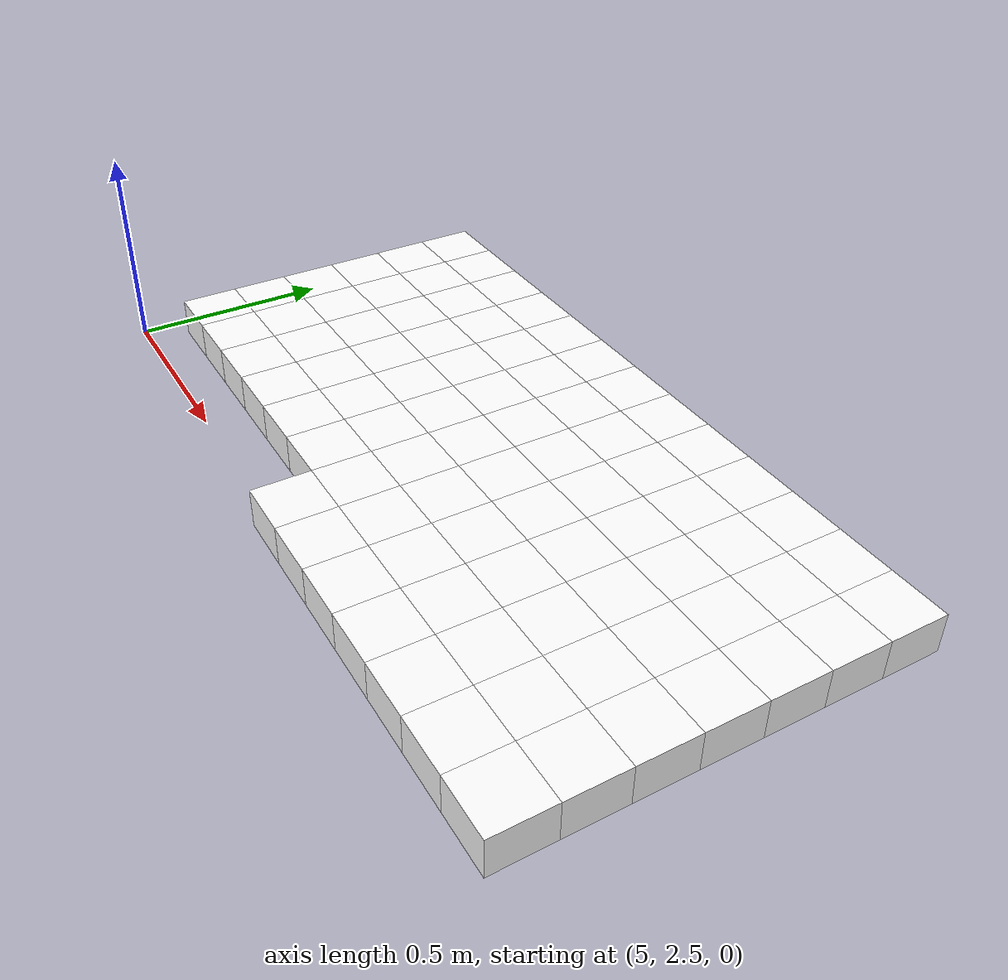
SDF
<sdf version="1.7">
 <world name="default">
  <include><uri>model://sun</uri></include>
  <model name="static_environment">
   <static>true</static>
   <link name="region_733">
    <pose>5.950000000000005 2.5499999999999994 0.0 0.0 0.0 0.0</pose>
    <collision name="region_733_collision">
     <geometry><box><size>0.15 0.15 0.1</size></box></geometry>
     <surface><friction><ode><mu>1.0</mu><mu2>1.0</mu2></ode></friction></surface>
    </collision>
    <visual name="region_733_visual">
     <geometry><box><size>0.15 0.15 0.1</size></box></geometry>
     <material><ambient>1.0 1.0 1.0 1.0</ambient><diffuse>1.0 1.0 1.0 1.0</diffuse></material>
    </visual>
   </link>
   <link name="region_734">
    <pose>6.100000000000005 2.5499999999999994 0.0 0.0 0.0 0.0</pose>
    <collision name="region_734_collision">
     <geometry><box><size>0.15 0.15 0.1</size></box></geometry>
     <surface><friction><ode><mu>1.0</mu><mu2>1.0</mu2></ode></friction></surface>
    </collision>
    <visual name="region_734_visual">
     <geometry><box><size>0.15 0.15 0.1</size></box></geometry>
     <material><ambient>1.0 1.0 1.0 1.0</ambient><diffuse>1.0 1.0 1.0 1.0</diffuse></material>
    </visual>
   </link>
   <link name="region_735">
    <pose>6.250000000000005 2.5499999999999994 0.0 0.0 0.0 0.0</pose>
    <collision name="region_735_collision">
     <geometry><box><size>0.15 0.15 0.1</size></box></geometry>
     <surface><friction><ode><mu>1.0</mu><mu2>1.0</mu2></ode></friction></surface>
    </collision>
    <visual name="region_735_visual">
     <geometry><box><size>0.15 0.15 0.1</size></box></geometry>
     <material><ambient>1.0 1.0 1.0 1.0</ambient><diffuse>1.0 1.0 1.0 1.0</diffuse></material>
    </visual>
   </link>
   <link name="region_736">
    <pose>6.400000000000006 2.5499999999999994 0.0 0.0 0.0 0.0</pose>
    <collision name="region_736_collision">
     <geometry><box><size>0.15 0.15 0.1</size></box></geometry>
     <surface><friction><ode><mu>1.0</mu><mu2>1.0</mu2></ode></friction></surface>
    </collision>
    <visual name="region_736_visual">
     <geometry><box><size>0.15 0.15 0.1</size></box></geometry>
     <material><ambient>1.0 1.0 1.0 1.0</ambient><diffuse>1.0 1.0 1.0 1.0</diffuse></material>
    </visual>
   </link>
   <link name="region_737">
    <pose>6.550000000000006 2.5499999999999994 0.0 0.0 0.0 0.0</pose>
    <collision name="region_737_collision">
     <geometry><box><size>0.15 0.15 0.1</size></box></geometry>
     <surface><friction><ode><mu>1.0</mu><mu2>1.0</mu2></ode></friction></surface>
    </collision>
    <visual name="region_737_visual">
     <geometry><box><size>0.15 0.15 0.1</size></box></geometry>
     <material><ambient>1.0 1.0 1.0 1.0</ambient><diffuse>1.0 1.0 1.0 1.0</diffuse></material>
    </visual>
   </link>
   <link name="region_738">
    <pose>6.700000000000006 2.5499999999999994 0.0 0.0 0.0 0.0</pose>
    <collision name="region_738_collision">
     <geometry><box><size>0.15 0.15 0.1</size></box></geometry>
     <surface><friction><ode><mu>1.0</mu><mu2>1.0</mu2></ode></friction></surface>
    </collision>
    <visual name="region_738_visual">
     <geometry><box><size>0.15 0.15 0.1</size></box></geometry>
     <material><ambient>1.0 1.0 1.0 1.0</ambient><diffuse>1.0 1.0 1.0 1.0</diffuse></material>
    </visual>
   </link>
   <link name="region_739">
    <pose>6.850000000000007 2.5499999999999994 0.0 0.0 0.0 0.0</pose>
    <collision name="region_739_collision">
     <geometry><box><size>0.15 0.15 0.1</size></box></geometry>
     <surface><friction><ode><mu>1.0</mu><mu2>1.0</mu2></ode></friction></surface>
    </collision>
    <visual name="region_739_visual">
     <geometry><box><size>0.15 0.15 0.1</size></box></geometry>
     <material><ambient>1.0 1.0 1.0 1.0</ambient><diffuse>1.0 1.0 1.0 1.0</diffuse></material>
    </visual>
   </link>
   <link name="region_747">
    <pose>5.0500000000000025 2.6999999999999997 0.0 0.0 0.0 0.0</pose>
    <collision name="region_747_collision">
     <geometry><box><size>0.15 0.15 0.1</size></box></geometry>
     <surface><friction><ode><mu>1.0</mu><mu2>1.0</mu2></ode></friction></surface>
    </collision>
    <visual name="region_747_visual">
     <geometry><box><size>0.15 0.15 0.1</size></box></geometry>
     <material><ambient>1.0 1.0 1.0 1.0</ambient><diffuse>1.0 1.0 1.0 1.0</diffuse></material>
    </visual>
   </link>
   <link name="region_748">
    <pose>5.200000000000003 2.6999999999999997 0.0 0.0 0.0 0.0</pose>
    <collision name="region_748_collision">
     <geometry><box><size>0.15 0.15 0.1</size></box></geometry>
     <surface><friction><ode><mu>1.0</mu><mu2>1.0</mu2></ode></friction></surface>
    </collision>
    <visual name="region_748_visual">
     <geometry><box><size>0.15 0.15 0.1</size></box></geometry>
     <material><ambient>1.0 1.0 1.0 1.0</ambient><diffuse>1.0 1.0 1.0 1.0</diffuse></material>
    </visual>
   </link>
   <link name="region_749">
    <pose>5.350000000000003 2.6999999999999997 0.0 0.0 0.0 0.0</pose>
    <collision name="region_749_collision">
     <geometry><box><size>0.15 0.15 0.1</size></box></geometry>
     <surface><friction><ode><mu>1.0</mu><mu2>1.0</mu2></ode></friction></surface>
    </collision>
    <visual name="region_749_visual">
     <geometry><box><size>0.15 0.15 0.1</size></box></geometry>
     <material><ambient>1.0 1.0 1.0 1.0</ambient><diffuse>1.0 1.0 1.0 1.0</diffuse></material>
    </visual>
   </link>
   <link name="region_750">
    <pose>5.5000000000000036 2.6999999999999997 0.0 0.0 0.0 0.0</pose>
    <collision name="region_750_collision">
     <geometry><box><size>0.15 0.15 0.1</size></box></geometry>
     <surface><friction><ode><mu>1.0</mu><mu2>1.0</mu2></ode></friction></surface>
    </collision>
    <visual name="region_750_visual">
     <geometry><box><size>0.15 0.15 0.1</size></box></geometry>
     <material><ambient>1.0 1.0 1.0 1.0</ambient><diffuse>1.0 1.0 1.0 1.0</diffuse></material>
    </visual>
   </link>
   <link name="region_751">
    <pose>5.650000000000004 2.6999999999999997 0.0 0.0 0.0 0.0</pose>
    <collision name="region_751_collision">
     <geometry><box><size>0.15 0.15 0.1</size></box></geometry>
     <surface><friction><ode><mu>1.0</mu><mu2>1.0</mu2></ode></friction></surface>
    </collision>
    <visual name="region_751_visual">
     <geometry><box><size>0.15 0.15 0.1</size></box></geometry>
     <material><ambient>1.0 1.0 1.0 1.0</ambient><diffuse>1.0 1.0 1.0 1.0</diffuse></material>
    </visual>
   </link>
   <link name="region_752">
    <pose>5.800000000000004 2.6999999999999997 0.0 0.0 0.0 0.0</pose>
    <collision name="region_752_collision">
     <geometry><box><size>0.15 0.15 0.1</size></box></geometry>
     <surface><friction><ode><mu>1.0</mu><mu2>1.0</mu2></ode></friction></surface>
    </collision>
    <visual name="region_752_visual">
     <geometry><box><size>0.15 0.15 0.1</size></box></geometry>
     <material><ambient>1.0 1.0 1.0 1.0</ambient><diffuse>1.0 1.0 1.0 1.0</diffuse></material>
    </visual>
   </link>
   <link name="region_753">
    <pose>5.950000000000005 2.6999999999999997 0.0 0.0 0.0 0.0</pose>
    <collision name="region_753_collision">
     <geometry><box><size>0.15 0.15 0.1</size></box></geometry>
     <surface><friction><ode><mu>1.0</mu><mu2>1.0</mu2></ode></friction></surface>
    </collision>
    <visual name="region_753_visual">
     <geometry><box><size>0.15 0.15 0.1</size></box></geometry>
     <material><ambient>1.0 1.0 1.0 1.0</ambient><diffuse>1.0 1.0 1.0 1.0</diffuse></material>
    </visual>
   </link>
   <link name="region_754">
    <pose>6.100000000000005 2.6999999999999997 0.0 0.0 0.0 0.0</pose>
    <collision name="region_754_collision">
     <geometry><box><size>0.15 0.15 0.1</size></box></geometry>
     <surface><friction><ode><mu>1.0</mu><mu2>1.0</mu2></ode></friction></surface>
    </collision>
    <visual name="region_754_visual">
     <geometry><box><size>0.15 0.15 0.1</size></box></geometry>
     <material><ambient>1.0 1.0 1.0 1.0</ambient><diffuse>1.0 1.0 1.0 1.0</diffuse></material>
    </visual>
   </link>
   <link name="region_755">
    <pose>6.250000000000005 2.6999999999999997 0.0 0.0 0.0 0.0</pose>
    <collision name="region_755_collision">
     <geometry><box><size>0.15 0.15 0.1</size></box></geometry>
     <surface><friction><ode><mu>1.0</mu><mu2>1.0</mu2></ode></friction></surface>
    </collision>
    <visual name="region_755_visual">
     <geometry><box><size>0.15 0.15 0.1</size></box></geometry>
     <material><ambient>1.0 1.0 1.0 1.0</ambient><diffuse>1.0 1.0 1.0 1.0</diffuse></material>
    </visual>
   </link>
   <link name="region_756">
    <pose>6.400000000000006 2.6999999999999997 0.0 0.0 0.0 0.0</pose>
    <collision name="region_756_collision">
     <geometry><box><size>0.15 0.15 0.1</size></box></geometry>
     <surface><friction><ode><mu>1.0</mu><mu2>1.0</mu2></ode></friction></surface>
    </collision>
    <visual name="region_756_visual">
     <geometry><box><size>0.15 0.15 0.1</size></box></geometry>
     <material><ambient>1.0 1.0 1.0 1.0</ambient><diffuse>1.0 1.0 1.0 1.0</diffuse></material>
    </visual>
   </link>
   <link name="region_757">
    <pose>6.550000000000006 2.6999999999999997 0.0 0.0 0.0 0.0</pose>
    <collision name="region_757_collision">
     <geometry><box><size>0.15 0.15 0.1</size></box></geometry>
     <surface><friction><ode><mu>1.0</mu><mu2>1.0</mu2></ode></friction></surface>
    </collision>
    <visual name="region_757_visual">
     <geometry><box><size>0.15 0.15 0.1</size></box></geometry>
     <material><ambient>1.0 1.0 1.0 1.0</ambient><diffuse>1.0 1.0 1.0 1.0</diffuse></material>
    </visual>
   </link>
   <link name="region_758">
    <pose>6.700000000000006 2.6999999999999997 0.0 0.0 0.0 0.0</pose>
    <collision name="region_758_collision">
     <geometry><box><size>0.15 0.15 0.1</size></box></geometry>
     <surface><friction><ode><mu>1.0</mu><mu2>1.0</mu2></ode></friction></surface>
    </collision>
    <visual name="region_758_visual">
     <geometry><box><size>0.15 0.15 0.1</size></box></geometry>
     <material><ambient>1.0 1.0 1.0 1.0</ambient><diffuse>1.0 1.0 1.0 1.0</diffuse></material>
    </visual>
   </link>
   <link name="region_759">
    <pose>6.850000000000007 2.6999999999999997 0.0 0.0 0.0 0.0</pose>
    <collision name="region_759_collision">
     <geometry><box><size>0.15 0.15 0.1</size></box></geometry>
     <surface><friction><ode><mu>1.0</mu><mu2>1.0</mu2></ode></friction></surface>
    </collision>
    <visual name="region_759_visual">
     <geometry><box><size>0.15 0.15 0.1</size></box></geometry>
     <material><ambient>1.0 1.0 1.0 1.0</ambient><diffuse>1.0 1.0 1.0 1.0</diffuse></material>
    </visual>
   </link>
   <link name="region_767">
    <pose>5.0500000000000025 2.8499999999999996 0.0 0.0 0.0 0.0</pose>
    <collision name="region_767_collision">
     <geometry><box><size>0.15 0.15 0.1</size></box></geometry>
     <surface><friction><ode><mu>1.0</mu><mu2>1.0</mu2></ode></friction></surface>
    </collision>
    <visual name="region_767_visual">
     <geometry><box><size>0.15 0.15 0.1</size></box></geometry>
     <material><ambient>1.0 1.0 1.0 1.0</ambient><diffuse>1.0 1.0 1.0 1.0</diffuse></material>
    </visual>
   </link>
   <link name="region_768">
    <pose>5.200000000000003 2.8499999999999996 0.0 0.0 0.0 0.0</pose>
    <collision name="region_768_collision">
     <geometry><box><size>0.15 0.15 0.1</size></box></geometry>
     <surface><friction><ode><mu>1.0</mu><mu2>1.0</mu2></ode></friction></surface>
    </collision>
    <visual name="region_768_visual">
     <geometry><box><size>0.15 0.15 0.1</size></box></geometry>
     <material><ambient>1.0 1.0 1.0 1.0</ambient><diffuse>1.0 1.0 1.0 1.0</diffuse></material>
    </visual>
   </link>
   <link name="region_769">
    <pose>5.350000000000003 2.8499999999999996 0.0 0.0 0.0 0.0</pose>
    <collision name="region_769_collision">
     <geometry><box><size>0.15 0.15 0.1</size></box></geometry>
     <surface><friction><ode><mu>1.0</mu><mu2>1.0</mu2></ode></friction></surface>
    </collision>
    <visual name="region_769_visual">
     <geometry><box><size>0.15 0.15 0.1</size></box></geometry>
     <material><ambient>1.0 1.0 1.0 1.0</ambient><diffuse>1.0 1.0 1.0 1.0</diffuse></material>
    </visual>
   </link>
   <link name="region_770">
    <pose>5.5000000000000036 2.8499999999999996 0.0 0.0 0.0 0.0</pose>
    <collision name="region_770_collision">
     <geometry><box><size>0.15 0.15 0.1</size></box></geometry>
     <surface><friction><ode><mu>1.0</mu><mu2>1.0</mu2></ode></friction></surface>
    </collision>
    <visual name="region_770_visual">
     <geometry><box><size>0.15 0.15 0.1</size></box></geometry>
     <material><ambient>1.0 1.0 1.0 1.0</ambient><diffuse>1.0 1.0 1.0 1.0</diffuse></material>
    </visual>
   </link>
   <link name="region_771">
    <pose>5.650000000000004 2.8499999999999996 0.0 0.0 0.0 0.0</pose>
    <collision name="region_771_collision">
     <geometry><box><size>0.15 0.15 0.1</size></box></geometry>
     <surface><friction><ode><mu>1.0</mu><mu2>1.0</mu2></ode></friction></surface>
    </collision>
    <visual name="region_771_visual">
     <geometry><box><size>0.15 0.15 0.1</size></box></geometry>
     <material><ambient>1.0 1.0 1.0 1.0</ambient><diffuse>1.0 1.0 1.0 1.0</diffuse></material>
    </visual>
   </link>
   <link name="region_772">
    <pose>5.800000000000004 2.8499999999999996 0.0 0.0 0.0 0.0</pose>
    <collision name="region_772_collision">
     <geometry><box><size>0.15 0.15 0.1</size></box></geometry>
     <surface><friction><ode><mu>1.0</mu><mu2>1.0</mu2></ode></friction></surface>
    </collision>
    <visual name="region_772_visual">
     <geometry><box><size>0.15 0.15 0.1</size></box></geometry>
     <material><ambient>1.0 1.0 1.0 1.0</ambient><diffuse>1.0 1.0 1.0 1.0</diffuse></material>
    </visual>
   </link>
   <link name="region_773">
    <pose>5.950000000000005 2.8499999999999996 0.0 0.0 0.0 0.0</pose>
    <collision name="region_773_collision">
     <geometry><box><size>0.15 0.15 0.1</size></box></geometry>
     <surface><friction><ode><mu>1.0</mu><mu2>1.0</mu2></ode></friction></surface>
    </collision>
    <visual name="region_773_visual">
     <geometry><box><size>0.15 0.15 0.1</size></box></geometry>
     <material><ambient>1.0 1.0 1.0 1.0</ambient><diffuse>1.0 1.0 1.0 1.0</diffuse></material>
    </visual>
   </link>
   <link name="region_774">
    <pose>6.100000000000005 2.8499999999999996 0.0 0.0 0.0 0.0</pose>
    <collision name="region_774_collision">
     <geometry><box><size>0.15 0.15 0.1</size></box></geometry>
     <surface><friction><ode><mu>1.0</mu><mu2>1.0</mu2></ode></friction></surface>
    </collision>
    <visual name="region_774_visual">
     <geometry><box><size>0.15 0.15 0.1</size></box></geometry>
     <material><ambient>1.0 1.0 1.0 1.0</ambient><diffuse>1.0 1.0 1.0 1.0</diffuse></material>
    </visual>
   </link>
   <link name="region_775">
    <pose>6.250000000000005 2.8499999999999996 0.0 0.0 0.0 0.0</pose>
    <collision name="region_775_collision">
     <geometry><box><size>0.15 0.15 0.1</size></box></geometry>
     <surface><friction><ode><mu>1.0</mu><mu2>1.0</mu2></ode></friction></surface>
    </collision>
    <visual name="region_775_visual">
     <geometry><box><size>0.15 0.15 0.1</size></box></geometry>
     <material><ambient>1.0 1.0 1.0 1.0</ambient><diffuse>1.0 1.0 1.0 1.0</diffuse></material>
    </visual>
   </link>
   <link name="region_776">
    <pose>6.400000000000006 2.8499999999999996 0.0 0.0 0.0 0.0</pose>
    <collision name="region_776_collision">
     <geometry><box><size>0.15 0.15 0.1</size></box></geometry>
     <surface><friction><ode><mu>1.0</mu><mu2>1.0</mu2></ode></friction></surface>
    </collision>
    <visual name="region_776_visual">
     <geometry><box><size>0.15 0.15 0.1</size></box></geometry>
     <material><ambient>1.0 1.0 1.0 1.0</ambient><diffuse>1.0 1.0 1.0 1.0</diffuse></material>
    </visual>
   </link>
   <link name="region_777">
    <pose>6.550000000000006 2.8499999999999996 0.0 0.0 0.0 0.0</pose>
    <collision name="region_777_collision">
     <geometry><box><size>0.15 0.15 0.1</size></box></geometry>
     <surface><friction><ode><mu>1.0</mu><mu2>1.0</mu2></ode></friction></surface>
    </collision>
    <visual name="region_777_visual">
     <geometry><box><size>0.15 0.15 0.1</size></box></geometry>
     <material><ambient>1.0 1.0 1.0 1.0</ambient><diffuse>1.0 1.0 1.0 1.0</diffuse></material>
    </visual>
   </link>
   <link name="region_778">
    <pose>6.700000000000006 2.8499999999999996 0.0 0.0 0.0 0.0</pose>
    <collision name="region_778_collision">
     <geometry><box><size>0.15 0.15 0.1</size></box></geometry>
     <surface><friction><ode><mu>1.0</mu><mu2>1.0</mu2></ode></friction></surface>
    </collision>
    <visual name="region_778_visual">
     <geometry><box><size>0.15 0.15 0.1</size></box></geometry>
     <material><ambient>1.0 1.0 1.0 1.0</ambient><diffuse>1.0 1.0 1.0 1.0</diffuse></material>
    </visual>
   </link>
   <link name="region_779">
    <pose>6.850000000000007 2.8499999999999996 0.0 0.0 0.0 0.0</pose>
    <collision name="region_779_collision">
     <geometry><box><size>0.15 0.15 0.1</size></box></geometry>
     <surface><friction><ode><mu>1.0</mu><mu2>1.0</mu2></ode></friction></surface>
    </collision>
    <visual name="region_779_visual">
     <geometry><box><size>0.15 0.15 0.1</size></box></geometry>
     <material><ambient>1.0 1.0 1.0 1.0</ambient><diffuse>1.0 1.0 1.0 1.0</diffuse></material>
    </visual>
   </link>
   <link name="region_787">
    <pose>5.0500000000000025 2.9999999999999996 0.0 0.0 0.0 0.0</pose>
    <collision name="region_787_collision">
     <geometry><box><size>0.15 0.15 0.1</size></box></geometry>
     <surface><friction><ode><mu>1.0</mu><mu2>1.0</mu2></ode></friction></surface>
    </collision>
    <visual name="region_787_visual">
     <geometry><box><size>0.15 0.15 0.1</size></box></geometry>
     <material><ambient>1.0 1.0 1.0 1.0</ambient><diffuse>1.0 1.0 1.0 1.0</diffuse></material>
    </visual>
   </link>
   <link name="region_788">
    <pose>5.200000000000003 2.9999999999999996 0.0 0.0 0.0 0.0</pose>
    <collision name="region_788_collision">
     <geometry><box><size>0.15 0.15 0.1</size></box></geometry>
     <surface><friction><ode><mu>1.0</mu><mu2>1.0</mu2></ode></friction></surface>
    </collision>
    <visual name="region_788_visual">
     <geometry><box><size>0.15 0.15 0.1</size></box></geometry>
     <material><ambient>1.0 1.0 1.0 1.0</ambient><diffuse>1.0 1.0 1.0 1.0</diffuse></material>
    </visual>
   </link>
   <link name="region_789">
    <pose>5.350000000000003 2.9999999999999996 0.0 0.0 0.0 0.0</pose>
    <collision name="region_789_collision">
     <geometry><box><size>0.15 0.15 0.1</size></box></geometry>
     <surface><friction><ode><mu>1.0</mu><mu2>1.0</mu2></ode></friction></surface>
    </collision>
    <visual name="region_789_visual">
     <geometry><box><size>0.15 0.15 0.1</size></box></geometry>
     <material><ambient>1.0 1.0 1.0 1.0</ambient><diffuse>1.0 1.0 1.0 1.0</diffuse></material>
    </visual>
   </link>
   <link name="region_790">
    <pose>5.5000000000000036 2.9999999999999996 0.0 0.0 0.0 0.0</pose>
    <collision name="region_790_collision">
     <geometry><box><size>0.15 0.15 0.1</size></box></geometry>
     <surface><friction><ode><mu>1.0</mu><mu2>1.0</mu2></ode></friction></surface>
    </collision>
    <visual name="region_790_visual">
     <geometry><box><size>0.15 0.15 0.1</size></box></geometry>
     <material><ambient>1.0 1.0 1.0 1.0</ambient><diffuse>1.0 1.0 1.0 1.0</diffuse></material>
    </visual>
   </link>
   <link name="region_791">
    <pose>5.650000000000004 2.9999999999999996 0.0 0.0 0.0 0.0</pose>
    <collision name="region_791_collision">
     <geometry><box><size>0.15 0.15 0.1</size></box></geometry>
     <surface><friction><ode><mu>1.0</mu><mu2>1.0</mu2></ode></friction></surface>
    </collision>
    <visual name="region_791_visual">
     <geometry><box><size>0.15 0.15 0.1</size></box></geometry>
     <material><ambient>1.0 1.0 1.0 1.0</ambient><diffuse>1.0 1.0 1.0 1.0</diffuse></material>
    </visual>
   </link>
   <link name="region_792">
    <pose>5.800000000000004 2.9999999999999996 0.0 0.0 0.0 0.0</pose>
    <collision name="region_792_collision">
     <geometry><box><size>0.15 0.15 0.1</size></box></geometry>
     <surface><friction><ode><mu>1.0</mu><mu2>1.0</mu2></ode></friction></surface>
    </collision>
    <visual name="region_792_visual">
     <geometry><box><size>0.15 0.15 0.1</size></box></geometry>
     <material><ambient>1.0 1.0 1.0 1.0</ambient><diffuse>1.0 1.0 1.0 1.0</diffuse></material>
    </visual>
   </link>
   <link name="region_793">
    <pose>5.950000000000005 2.9999999999999996 0.0 0.0 0.0 0.0</pose>
    <collision name="region_793_collision">
     <geometry><box><size>0.15 0.15 0.1</size></box></geometry>
     <surface><friction><ode><mu>1.0</mu><mu2>1.0</mu2></ode></friction></surface>
    </collision>
    <visual name="region_793_visual">
     <geometry><box><size>0.15 0.15 0.1</size></box></geometry>
     <material><ambient>1.0 1.0 1.0 1.0</ambient><diffuse>1.0 1.0 1.0 1.0</diffuse></material>
    </visual>
   </link>
   <link name="region_794">
    <pose>6.100000000000005 2.9999999999999996 0.0 0.0 0.0 0.0</pose>
    <collision name="region_794_collision">
     <geometry><box><size>0.15 0.15 0.1</size></box></geometry>
     <surface><friction><ode><mu>1.0</mu><mu2>1.0</mu2></ode></friction></surface>
    </collision>
    <visual name="region_794_visual">
     <geometry><box><size>0.15 0.15 0.1</size></box></geometry>
     <material><ambient>1.0 1.0 1.0 1.0</ambient><diffuse>1.0 1.0 1.0 1.0</diffuse></material>
    </visual>
   </link>
   <link name="region_795">
    <pose>6.250000000000005 2.9999999999999996 0.0 0.0 0.0 0.0</pose>
    <collision name="region_795_collision">
     <geometry><box><size>0.15 0.15 0.1</size></box></geometry>
     <surface><friction><ode><mu>1.0</mu><mu2>1.0</mu2></ode></friction></surface>
    </collision>
    <visual name="region_795_visual">
     <geometry><box><size>0.15 0.15 0.1</size></box></geometry>
     <material><ambient>1.0 1.0 1.0 1.0</ambient><diffuse>1.0 1.0 1.0 1.0</diffuse></material>
    </visual>
   </link>
   <link name="region_796">
    <pose>6.400000000000006 2.9999999999999996 0.0 0.0 0.0 0.0</pose>
    <collision name="region_796_collision">
     <geometry><box><size>0.15 0.15 0.1</size></box></geometry>
     <surface><friction><ode><mu>1.0</mu><mu2>1.0</mu2></ode></friction></surface>
    </collision>
    <visual name="region_796_visual">
     <geometry><box><size>0.15 0.15 0.1</size></box></geometry>
     <material><ambient>1.0 1.0 1.0 1.0</ambient><diffuse>1.0 1.0 1.0 1.0</diffuse></material>
    </visual>
   </link>
   <link name="region_797">
    <pose>6.550000000000006 2.9999999999999996 0.0 0.0 0.0 0.0</pose>
    <collision name="region_797_collision">
     <geometry><box><size>0.15 0.15 0.1</size></box></geometry>
     <surface><friction><ode><mu>1.0</mu><mu2>1.0</mu2></ode></friction></surface>
    </collision>
    <visual name="region_797_visual">
     <geometry><box><size>0.15 0.15 0.1</size></box></geometry>
     <material><ambient>1.0 1.0 1.0 1.0</ambient><diffuse>1.0 1.0 1.0 1.0</diffuse></material>
    </visual>
   </link>
   <link name="region_798">
    <pose>6.700000000000006 2.9999999999999996 0.0 0.0 0.0 0.0</pose>
    <collision name="region_798_collision">
     <geometry><box><size>0.15 0.15 0.1</size></box></geometry>
     <surface><friction><ode><mu>1.0</mu><mu2>1.0</mu2></ode></friction></surface>
    </collision>
    <visual name="region_798_visual">
     <geometry><box><size>0.15 0.15 0.1</size></box></geometry>
     <material><ambient>1.0 1.0 1.0 1.0</ambient><diffuse>1.0 1.0 1.0 1.0</diffuse></material>
    </visual>
   </link>
   <link name="region_799">
    <pose>6.850000000000007 2.9999999999999996 0.0 0.0 0.0 0.0</pose>
    <collision name="region_799_collision">
     <geometry><box><size>0.15 0.15 0.1</size></box></geometry>
     <surface><friction><ode><mu>1.0</mu><mu2>1.0</mu2></ode></friction></surface>
    </collision>
    <visual name="region_799_visual">
     <geometry><box><size>0.15 0.15 0.1</size></box></geometry>
     <material><ambient>1.0 1.0 1.0 1.0</ambient><diffuse>1.0 1.0 1.0 1.0</diffuse></material>
    </visual>
   </link>
   <link name="region_807">
    <pose>5.0500000000000025 3.1499999999999995 0.0 0.0 0.0 0.0</pose>
    <collision name="region_807_collision">
     <geometry><box><size>0.15 0.15 0.1</size></box></geometry>
     <surface><friction><ode><mu>1.0</mu><mu2>1.0</mu2></ode></friction></surface>
    </collision>
    <visual name="region_807_visual">
     <geometry><box><size>0.15 0.15 0.1</size></box></geometry>
     <material><ambient>1.0 1.0 1.0 1.0</ambient><diffuse>1.0 1.0 1.0 1.0</diffuse></material>
    </visual>
   </link>
   <link name="region_808">
    <pose>5.200000000000003 3.1499999999999995 0.0 0.0 0.0 0.0</pose>
    <collision name="region_808_collision">
     <geometry><box><size>0.15 0.15 0.1</size></box></geometry>
     <surface><friction><ode><mu>1.0</mu><mu2>1.0</mu2></ode></friction></surface>
    </collision>
    <visual name="region_808_visual">
     <geometry><box><size>0.15 0.15 0.1</size></box></geometry>
     <material><ambient>1.0 1.0 1.0 1.0</ambient><diffuse>1.0 1.0 1.0 1.0</diffuse></material>
    </visual>
   </link>
   <link name="region_809">
    <pose>5.350000000000003 3.1499999999999995 0.0 0.0 0.0 0.0</pose>
    <collision name="region_809_collision">
     <geometry><box><size>0.15 0.15 0.1</size></box></geometry>
     <surface><friction><ode><mu>1.0</mu><mu2>1.0</mu2></ode></friction></surface>
    </collision>
    <visual name="region_809_visual">
     <geometry><box><size>0.15 0.15 0.1</size></box></geometry>
     <material><ambient>1.0 1.0 1.0 1.0</ambient><diffuse>1.0 1.0 1.0 1.0</diffuse></material>
    </visual>
   </link>
   <link name="region_810">
    <pose>5.5000000000000036 3.1499999999999995 0.0 0.0 0.0 0.0</pose>
    <collision name="region_810_collision">
     <geometry><box><size>0.15 0.15 0.1</size></box></geometry>
     <surface><friction><ode><mu>1.0</mu><mu2>1.0</mu2></ode></friction></surface>
    </collision>
    <visual name="region_810_visual">
     <geometry><box><size>0.15 0.15 0.1</size></box></geometry>
     <material><ambient>1.0 1.0 1.0 1.0</ambient><diffuse>1.0 1.0 1.0 1.0</diffuse></material>
    </visual>
   </link>
   <link name="region_811">
    <pose>5.650000000000004 3.1499999999999995 0.0 0.0 0.0 0.0</pose>
    <collision name="region_811_collision">
     <geometry><box><size>0.15 0.15 0.1</size></box></geometry>
     <surface><friction><ode><mu>1.0</mu><mu2>1.0</mu2></ode></friction></surface>
    </collision>
    <visual name="region_811_visual">
     <geometry><box><size>0.15 0.15 0.1</size></box></geometry>
     <material><ambient>1.0 1.0 1.0 1.0</ambient><diffuse>1.0 1.0 1.0 1.0</diffuse></material>
    </visual>
   </link>
   <link name="region_812">
    <pose>5.800000000000004 3.1499999999999995 0.0 0.0 0.0 0.0</pose>
    <collision name="region_812_collision">
     <geometry><box><size>0.15 0.15 0.1</size></box></geometry>
     <surface><friction><ode><mu>1.0</mu><mu2>1.0</mu2></ode></friction></surface>
    </collision>
    <visual name="region_812_visual">
     <geometry><box><size>0.15 0.15 0.1</size></box></geometry>
     <material><ambient>1.0 1.0 1.0 1.0</ambient><diffuse>1.0 1.0 1.0 1.0</diffuse></material>
    </visual>
   </link>
   <link name="region_813">
    <pose>5.950000000000005 3.1499999999999995 0.0 0.0 0.0 0.0</pose>
    <collision name="region_813_collision">
     <geometry><box><size>0.15 0.15 0.1</size></box></geometry>
     <surface><friction><ode><mu>1.0</mu><mu2>1.0</mu2></ode></friction></surface>
    </collision>
    <visual name="region_813_visual">
     <geometry><box><size>0.15 0.15 0.1</size></box></geometry>
     <material><ambient>1.0 1.0 1.0 1.0</ambient><diffuse>1.0 1.0 1.0 1.0</diffuse></material>
    </visual>
   </link>
   <link name="region_814">
    <pose>6.100000000000005 3.1499999999999995 0.0 0.0 0.0 0.0</pose>
    <collision name="region_814_collision">
     <geometry><box><size>0.15 0.15 0.1</size></box></geometry>
     <surface><friction><ode><mu>1.0</mu><mu2>1.0</mu2></ode></friction></surface>
    </collision>
    <visual name="region_814_visual">
     <geometry><box><size>0.15 0.15 0.1</size></box></geometry>
     <material><ambient>1.0 1.0 1.0 1.0</ambient><diffuse>1.0 1.0 1.0 1.0</diffuse></material>
    </visual>
   </link>
   <link name="region_815">
    <pose>6.250000000000005 3.1499999999999995 0.0 0.0 0.0 0.0</pose>
    <collision name="region_815_collision">
     <geometry><box><size>0.15 0.15 0.1</size></box></geometry>
     <surface><friction><ode><mu>1.0</mu><mu2>1.0</mu2></ode></friction></surface>
    </collision>
    <visual name="region_815_visual">
     <geometry><box><size>0.15 0.15 0.1</size></box></geometry>
     <material><ambient>1.0 1.0 1.0 1.0</ambient><diffuse>1.0 1.0 1.0 1.0</diffuse></material>
    </visual>
   </link>
   <link name="region_816">
    <pose>6.400000000000006 3.1499999999999995 0.0 0.0 0.0 0.0</pose>
    <collision name="region_816_collision">
     <geometry><box><size>0.15 0.15 0.1</size></box></geometry>
     <surface><friction><ode><mu>1.0</mu><mu2>1.0</mu2></ode></friction></surface>
    </collision>
    <visual name="region_816_visual">
     <geometry><box><size>0.15 0.15 0.1</size></box></geometry>
     <material><ambient>1.0 1.0 1.0 1.0</ambient><diffuse>1.0 1.0 1.0 1.0</diffuse></material>
    </visual>
   </link>
   <link name="region_817">
    <pose>6.550000000000006 3.1499999999999995 0.0 0.0 0.0 0.0</pose>
    <collision name="region_817_collision">
     <geometry><box><size>0.15 0.15 0.1</size></box></geometry>
     <surface><friction><ode><mu>1.0</mu><mu2>1.0</mu2></ode></friction></surface>
    </collision>
    <visual name="region_817_visual">
     <geometry><box><size>0.15 0.15 0.1</size></box></geometry>
     <material><ambient>1.0 1.0 1.0 1.0</ambient><diffuse>1.0 1.0 1.0 1.0</diffuse></material>
    </visual>
   </link>
   <link name="region_818">
    <pose>6.700000000000006 3.1499999999999995 0.0 0.0 0.0 0.0</pose>
    <collision name="region_818_collision">
     <geometry><box><size>0.15 0.15 0.1</size></box></geometry>
     <surface><friction><ode><mu>1.0</mu><mu2>1.0</mu2></ode></friction></surface>
    </collision>
    <visual name="region_818_visual">
     <geometry><box><size>0.15 0.15 0.1</size></box></geometry>
     <material><ambient>1.0 1.0 1.0 1.0</ambient><diffuse>1.0 1.0 1.0 1.0</diffuse></material>
    </visual>
   </link>
   <link name="region_819">
    <pose>6.850000000000007 3.1499999999999995 0.0 0.0 0.0 0.0</pose>
    <collision name="region_819_collision">
     <geometry><box><size>0.15 0.15 0.1</size></box></geometry>
     <surface><friction><ode><mu>1.0</mu><mu2>1.0</mu2></ode></friction></surface>
    </collision>
    <visual name="region_819_visual">
     <geometry><box><size>0.15 0.15 0.1</size></box></geometry>
     <material><ambient>1.0 1.0 1.0 1.0</ambient><diffuse>1.0 1.0 1.0 1.0</diffuse></material>
    </visual>
   </link>
   <link name="region_827">
    <pose>5.0500000000000025 3.2999999999999994 0.0 0.0 0.0 0.0</pose>
    <collision name="region_827_collision">
     <geometry><box><size>0.15 0.15 0.1</size></box></geometry>
     <surface><friction><ode><mu>1.0</mu><mu2>1.0</mu2></ode></friction></surface>
    </collision>
    <visual name="region_827_visual">
     <geometry><box><size>0.15 0.15 0.1</size></box></geometry>
     <material><ambient>1.0 1.0 1.0 1.0</ambient><diffuse>1.0 1.0 1.0 1.0</diffuse></material>
    </visual>
   </link>
   <link name="region_828">
    <pose>5.200000000000003 3.2999999999999994 0.0 0.0 0.0 0.0</pose>
    <collision name="region_828_collision">
     <geometry><box><size>0.15 0.15 0.1</size></box></geometry>
     <surface><friction><ode><mu>1.0</mu><mu2>1.0</mu2></ode></friction></surface>
    </collision>
    <visual name="region_828_visual">
     <geometry><box><size>0.15 0.15 0.1</size></box></geometry>
     <material><ambient>1.0 1.0 1.0 1.0</ambient><diffuse>1.0 1.0 1.0 1.0</diffuse></material>
    </visual>
   </link>
   <link name="region_829">
    <pose>5.350000000000003 3.2999999999999994 0.0 0.0 0.0 0.0</pose>
    <collision name="region_829_collision">
     <geometry><box><size>0.15 0.15 0.1</size></box></geometry>
     <surface><friction><ode><mu>1.0</mu><mu2>1.0</mu2></ode></friction></surface>
    </collision>
    <visual name="region_829_visual">
     <geometry><box><size>0.15 0.15 0.1</size></box></geometry>
     <material><ambient>1.0 1.0 1.0 1.0</ambient><diffuse>1.0 1.0 1.0 1.0</diffuse></material>
    </visual>
   </link>
   <link name="region_830">
    <pose>5.5000000000000036 3.2999999999999994 0.0 0.0 0.0 0.0</pose>
    <collision name="region_830_collision">
     <geometry><box><size>0.15 0.15 0.1</size></box></geometry>
     <surface><friction><ode><mu>1.0</mu><mu2>1.0</mu2></ode></friction></surface>
    </collision>
    <visual name="region_830_visual">
     <geometry><box><size>0.15 0.15 0.1</size></box></geometry>
     <material><ambient>1.0 1.0 1.0 1.0</ambient><diffuse>1.0 1.0 1.0 1.0</diffuse></material>
    </visual>
   </link>
   <link name="region_831">
    <pose>5.650000000000004 3.2999999999999994 0.0 0.0 0.0 0.0</pose>
    <collision name="region_831_collision">
     <geometry><box><size>0.15 0.15 0.1</size></box></geometry>
     <surface><friction><ode><mu>1.0</mu><mu2>1.0</mu2></ode></friction></surface>
    </collision>
    <visual name="region_831_visual">
     <geometry><box><size>0.15 0.15 0.1</size></box></geometry>
     <material><ambient>1.0 1.0 1.0 1.0</ambient><diffuse>1.0 1.0 1.0 1.0</diffuse></material>
    </visual>
   </link>
   <link name="region_832">
    <pose>5.800000000000004 3.2999999999999994 0.0 0.0 0.0 0.0</pose>
    <collision name="region_832_collision">
     <geometry><box><size>0.15 0.15 0.1</size></box></geometry>
     <surface><friction><ode><mu>1.0</mu><mu2>1.0</mu2></ode></friction></surface>
    </collision>
    <visual name="region_832_visual">
     <geometry><box><size>0.15 0.15 0.1</size></box></geometry>
     <material><ambient>1.0 1.0 1.0 1.0</ambient><diffuse>1.0 1.0 1.0 1.0</diffuse></material>
    </visual>
   </link>
   <link name="region_833">
    <pose>5.950000000000005 3.2999999999999994 0.0 0.0 0.0 0.0</pose>
    <collision name="region_833_collision">
     <geometry><box><size>0.15 0.15 0.1</size></box></geometry>
     <surface><friction><ode><mu>1.0</mu><mu2>1.0</mu2></ode></friction></surface>
    </collision>
    <visual name="region_833_visual">
     <geometry><box><size>0.15 0.15 0.1</size></box></geometry>
     <material><ambient>1.0 1.0 1.0 1.0</ambient><diffuse>1.0 1.0 1.0 1.0</diffuse></material>
    </visual>
   </link>
   <link name="region_834">
    <pose>6.100000000000005 3.2999999999999994 0.0 0.0 0.0 0.0</pose>
    <collision name="region_834_collision">
     <geometry><box><size>0.15 0.15 0.1</size></box></geometry>
     <surface><friction><ode><mu>1.0</mu><mu2>1.0</mu2></ode></friction></surface>
    </collision>
    <visual name="region_834_visual">
     <geometry><box><size>0.15 0.15 0.1</size></box></geometry>
     <material><ambient>1.0 1.0 1.0 1.0</ambient><diffuse>1.0 1.0 1.0 1.0</diffuse></material>
    </visual>
   </link>
   <link name="region_835">
    <pose>6.250000000000005 3.2999999999999994 0.0 0.0 0.0 0.0</pose>
    <collision name="region_835_collision">
     <geometry><box><size>0.15 0.15 0.1</size></box></geometry>
     <surface><friction><ode><mu>1.0</mu><mu2>1.0</mu2></ode></friction></surface>
    </collision>
    <visual name="region_835_visual">
     <geometry><box><size>0.15 0.15 0.1</size></box></geometry>
     <material><ambient>1.0 1.0 1.0 1.0</ambient><diffuse>1.0 1.0 1.0 1.0</diffuse></material>
    </visual>
   </link>
   <link name="region_836">
    <pose>6.400000000000006 3.2999999999999994 0.0 0.0 0.0 0.0</pose>
    <collision name="region_836_collision">
     <geometry><box><size>0.15 0.15 0.1</size></box></geometry>
     <surface><friction><ode><mu>1.0</mu><mu2>1.0</mu2></ode></friction></surface>
    </collision>
    <visual name="region_836_visual">
     <geometry><box><size>0.15 0.15 0.1</size></box></geometry>
     <material><ambient>1.0 1.0 1.0 1.0</ambient><diffuse>1.0 1.0 1.0 1.0</diffuse></material>
    </visual>
   </link>
   <link name="region_837">
    <pose>6.550000000000006 3.2999999999999994 0.0 0.0 0.0 0.0</pose>
    <collision name="region_837_collision">
     <geometry><box><size>0.15 0.15 0.1</size></box></geometry>
     <surface><friction><ode><mu>1.0</mu><mu2>1.0</mu2></ode></friction></surface>
    </collision>
    <visual name="region_837_visual">
     <geometry><box><size>0.15 0.15 0.1</size></box></geometry>
     <material><ambient>1.0 1.0 1.0 1.0</ambient><diffuse>1.0 1.0 1.0 1.0</diffuse></material>
    </visual>
   </link>
   <link name="region_838">
    <pose>6.700000000000006 3.2999999999999994 0.0 0.0 0.0 0.0</pose>
    <collision name="region_838_collision">
     <geometry><box><size>0.15 0.15 0.1</size></box></geometry>
     <surface><friction><ode><mu>1.0</mu><mu2>1.0</mu2></ode></friction></surface>
    </collision>
    <visual name="region_838_visual">
     <geometry><box><size>0.15 0.15 0.1</size></box></geometry>
     <material><ambient>1.0 1.0 1.0 1.0</ambient><diffuse>1.0 1.0 1.0 1.0</diffuse></material>
    </visual>
   </link>
   <link name="region_839">
    <pose>6.850000000000007 3.2999999999999994 0.0 0.0 0.0 0.0</pose>
    <collision name="region_839_collision">
     <geometry><box><size>0.15 0.15 0.1</size></box></geometry>
     <surface><friction><ode><mu>1.0</mu><mu2>1.0</mu2></ode></friction></surface>
    </collision>
    <visual name="region_839_visual">
     <geometry><box><size>0.15 0.15 0.1</size></box></geometry>
     <material><ambient>1.0 1.0 1.0 1.0</ambient><diffuse>1.0 1.0 1.0 1.0</diffuse></material>
    </visual>
   </link>
   <link name="region_847">
    <pose>5.0500000000000025 3.4499999999999993 0.0 0.0 0.0 0.0</pose>
    <collision name="region_847_collision">
     <geometry><box><size>0.15 0.15 0.1</size></box></geometry>
     <surface><friction><ode><mu>1.0</mu><mu2>1.0</mu2></ode></friction></surface>
    </collision>
    <visual name="region_847_visual">
     <geometry><box><size>0.15 0.15 0.1</size></box></geometry>
     <material><ambient>1.0 1.0 1.0 1.0</ambient><diffuse>1.0 1.0 1.0 1.0</diffuse></material>
    </visual>
   </link>
   <link name="region_848">
    <pose>5.200000000000003 3.4499999999999993 0.0 0.0 0.0 0.0</pose>
    <collision name="region_848_collision">
     <geometry><box><size>0.15 0.15 0.1</size></box></geometry>
     <surface><friction><ode><mu>1.0</mu><mu2>1.0</mu2></ode></friction></surface>
    </collision>
    <visual name="region_848_visual">
     <geometry><box><size>0.15 0.15 0.1</size></box></geometry>
     <material><ambient>1.0 1.0 1.0 1.0</ambient><diffuse>1.0 1.0 1.0 1.0</diffuse></material>
    </visual>
   </link>
   <link name="region_849">
    <pose>5.350000000000003 3.4499999999999993 0.0 0.0 0.0 0.0</pose>
    <collision name="region_849_collision">
     <geometry><box><size>0.15 0.15 0.1</size></box></geometry>
     <surface><friction><ode><mu>1.0</mu><mu2>1.0</mu2></ode></friction></surface>
    </collision>
    <visual name="region_849_visual">
     <geometry><box><size>0.15 0.15 0.1</size></box></geometry>
     <material><ambient>1.0 1.0 1.0 1.0</ambient><diffuse>1.0 1.0 1.0 1.0</diffuse></material>
    </visual>
   </link>
   <link name="region_850">
    <pose>5.5000000000000036 3.4499999999999993 0.0 0.0 0.0 0.0</pose>
    <collision name="region_850_collision">
     <geometry><box><size>0.15 0.15 0.1</size></box></geometry>
     <surface><friction><ode><mu>1.0</mu><mu2>1.0</mu2></ode></friction></surface>
    </collision>
    <visual name="region_850_visual">
     <geometry><box><size>0.15 0.15 0.1</size></box></geometry>
     <material><ambient>1.0 1.0 1.0 1.0</ambient><diffuse>1.0 1.0 1.0 1.0</diffuse></material>
    </visual>
   </link>
   <link name="region_851">
    <pose>5.650000000000004 3.4499999999999993 0.0 0.0 0.0 0.0</pose>
    <collision name="region_851_collision">
     <geometry><box><size>0.15 0.15 0.1</size></box></geometry>
     <surface><friction><ode><mu>1.0</mu><mu2>1.0</mu2></ode></friction></surface>
    </collision>
    <visual name="region_851_visual">
     <geometry><box><size>0.15 0.15 0.1</size></box></geometry>
     <material><ambient>1.0 1.0 1.0 1.0</ambient><diffuse>1.0 1.0 1.0 1.0</diffuse></material>
    </visual>
   </link>
   <link name="region_852">
    <pose>5.800000000000004 3.4499999999999993 0.0 0.0 0.0 0.0</pose>
    <collision name="region_852_collision">
     <geometry><box><size>0.15 0.15 0.1</size></box></geometry>
     <surface><friction><ode><mu>1.0</mu><mu2>1.0</mu2></ode></friction></surface>
    </collision>
    <visual name="region_852_visual">
     <geometry><box><size>0.15 0.15 0.1</size></box></geometry>
     <material><ambient>1.0 1.0 1.0 1.0</ambient><diffuse>1.0 1.0 1.0 1.0</diffuse></material>
    </visual>
   </link>
   <link name="region_853">
    <pose>5.950000000000005 3.4499999999999993 0.0 0.0 0.0 0.0</pose>
    <collision name="region_853_collision">
     <geometry><box><size>0.15 0.15 0.1</size></box></geometry>
     <surface><friction><ode><mu>1.0</mu><mu2>1.0</mu2></ode></friction></surface>
    </collision>
    <visual name="region_853_visual">
     <geometry><box><size>0.15 0.15 0.1</size></box></geometry>
     <material><ambient>1.0 1.0 1.0 1.0</ambient><diffuse>1.0 1.0 1.0 1.0</diffuse></material>
    </visual>
   </link>
   <link name="region_854">
    <pose>6.100000000000005 3.4499999999999993 0.0 0.0 0.0 0.0</pose>
    <collision name="region_854_collision">
     <geometry><box><size>0.15 0.15 0.1</size></box></geometry>
     <surface><friction><ode><mu>1.0</mu><mu2>1.0</mu2></ode></friction></surface>
    </collision>
    <visual name="region_854_visual">
     <geometry><box><size>0.15 0.15 0.1</size></box></geometry>
     <material><ambient>1.0 1.0 1.0 1.0</ambient><diffuse>1.0 1.0 1.0 1.0</diffuse></material>
    </visual>
   </link>
   <link name="region_855">
    <pose>6.250000000000005 3.4499999999999993 0.0 0.0 0.0 0.0</pose>
    <collision name="region_855_collision">
     <geometry><box><size>0.15 0.15 0.1</size></box></geometry>
     <surface><friction><ode><mu>1.0</mu><mu2>1.0</mu2></ode></friction></surface>
    </collision>
    <visual name="region_855_visual">
     <geometry><box><size>0.15 0.15 0.1</size></box></geometry>
     <material><ambient>1.0 1.0 1.0 1.0</ambient><diffuse>1.0 1.0 1.0 1.0</diffuse></material>
    </visual>
   </link>
   <link name="region_856">
    <pose>6.400000000000006 3.4499999999999993 0.0 0.0 0.0 0.0</pose>
    <collision name="region_856_collision">
     <geometry><box><size>0.15 0.15 0.1</size></box></geometry>
     <surface><friction><ode><mu>1.0</mu><mu2>1.0</mu2></ode></friction></surface>
    </collision>
    <visual name="region_856_visual">
     <geometry><box><size>0.15 0.15 0.1</size></box></geometry>
     <material><ambient>1.0 1.0 1.0 1.0</ambient><diffuse>1.0 1.0 1.0 1.0</diffuse></material>
    </visual>
   </link>
   <link name="region_857">
    <pose>6.550000000000006 3.4499999999999993 0.0 0.0 0.0 0.0</pose>
    <collision name="region_857_collision">
     <geometry><box><size>0.15 0.15 0.1</size></box></geometry>
     <surface><friction><ode><mu>1.0</mu><mu2>1.0</mu2></ode></friction></surface>
    </collision>
    <visual name="region_857_visual">
     <geometry><box><size>0.15 0.15 0.1</size></box></geometry>
     <material><ambient>1.0 1.0 1.0 1.0</ambient><diffuse>1.0 1.0 1.0 1.0</diffuse></material>
    </visual>
   </link>
   <link name="region_858">
    <pose>6.700000000000006 3.4499999999999993 0.0 0.0 0.0 0.0</pose>
    <collision name="region_858_collision">
     <geometry><box><size>0.15 0.15 0.1</size></box></geometry>
     <surface><friction><ode><mu>1.0</mu><mu2>1.0</mu2></ode></friction></surface>
    </collision>
    <visual name="region_858_visual">
     <geometry><box><size>0.15 0.15 0.1</size></box></geometry>
     <material><ambient>1.0 1.0 1.0 1.0</ambient><diffuse>1.0 1.0 1.0 1.0</diffuse></material>
    </visual>
   </link>
   <link name="region_859">
    <pose>6.850000000000007 3.4499999999999993 0.0 0.0 0.0 0.0</pose>
    <collision name="region_859_collision">
     <geometry><box><size>0.15 0.15 0.1</size></box></geometry>
     <surface><friction><ode><mu>1.0</mu><mu2>1.0</mu2></ode></friction></surface>
    </collision>
    <visual name="region_859_visual">
     <geometry><box><size>0.15 0.15 0.1</size></box></geometry>
     <material><ambient>1.0 1.0 1.0 1.0</ambient><diffuse>1.0 1.0 1.0 1.0</diffuse></material>
    </visual>
   </link>
  </model>
 </world>
</sdf>
